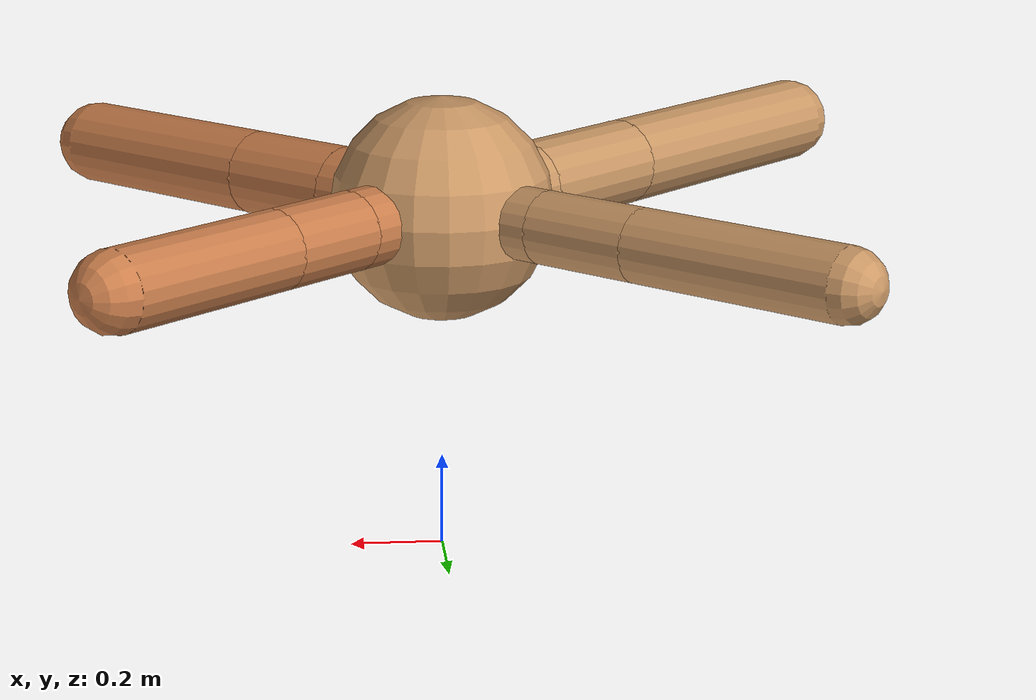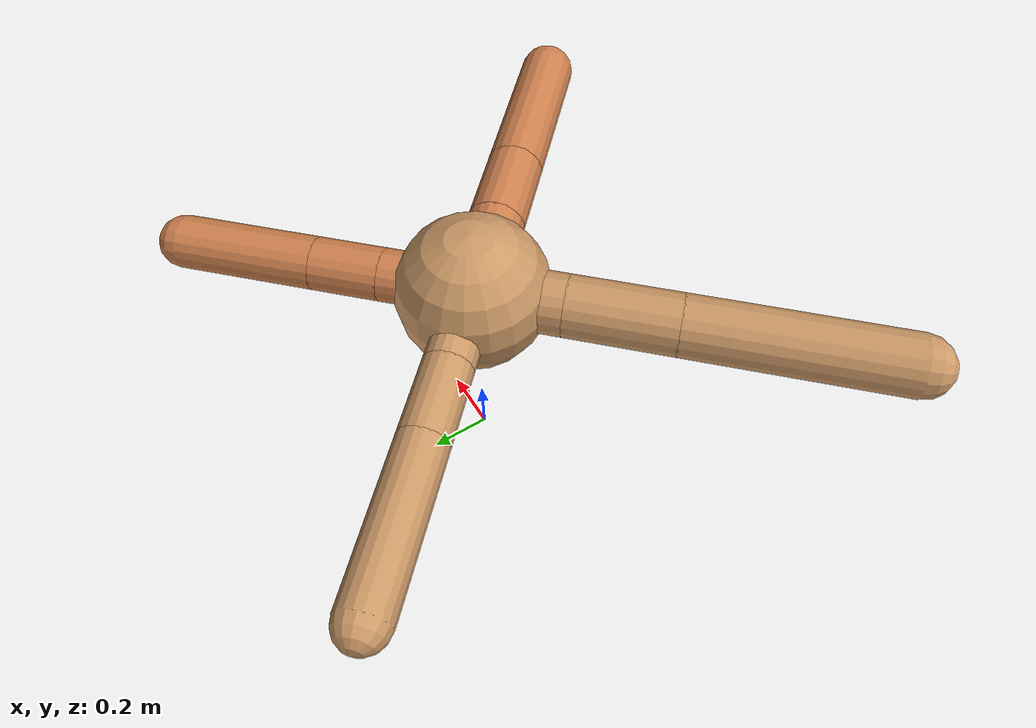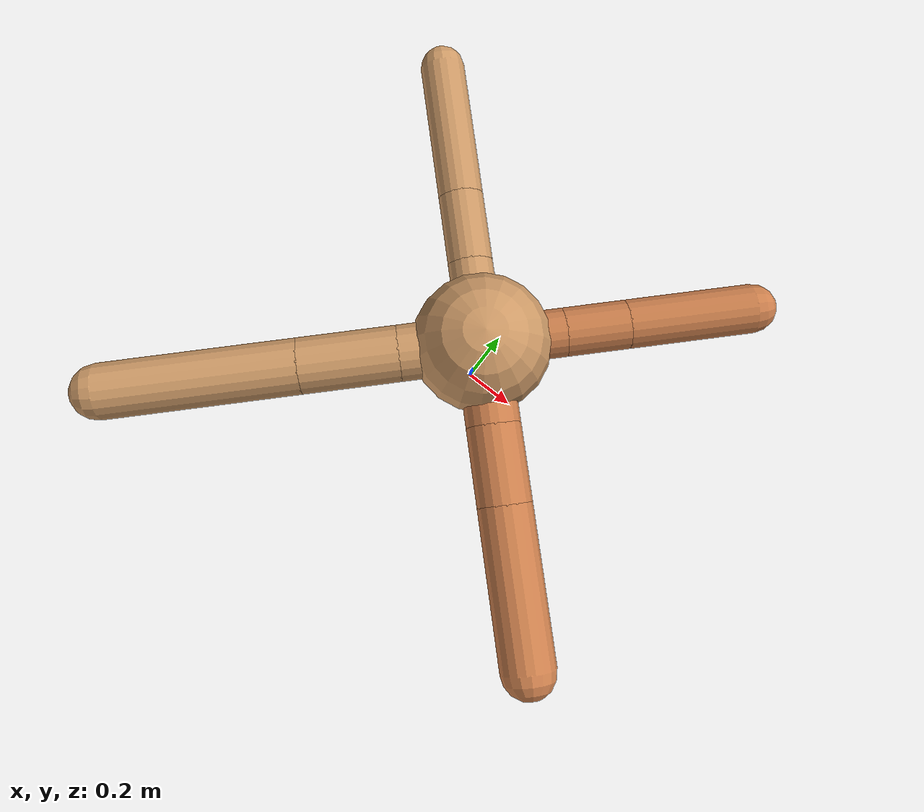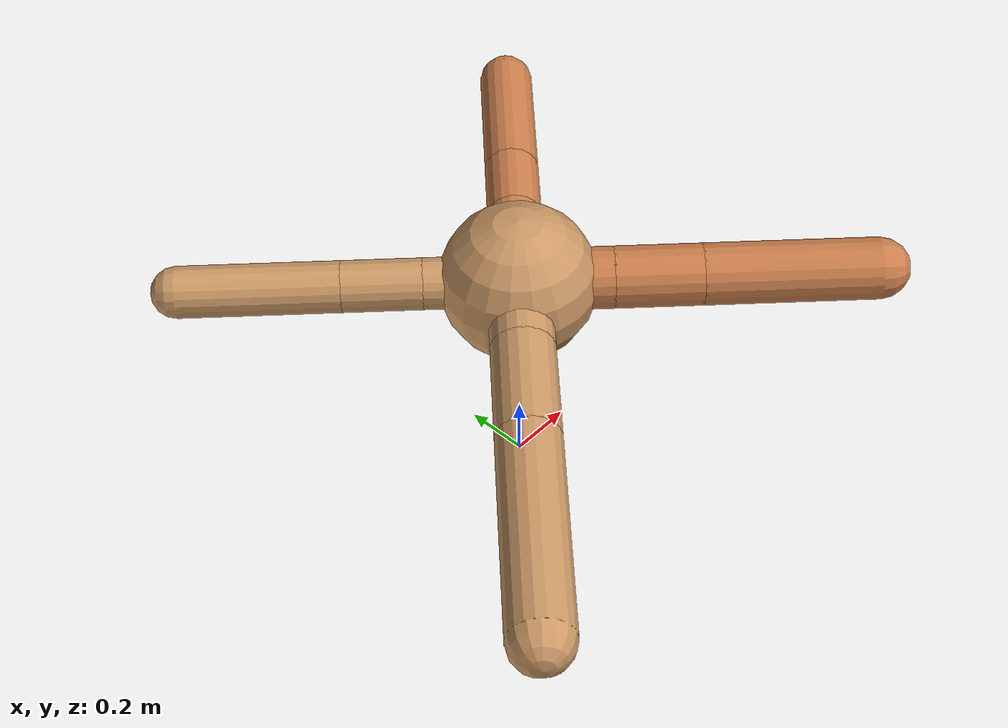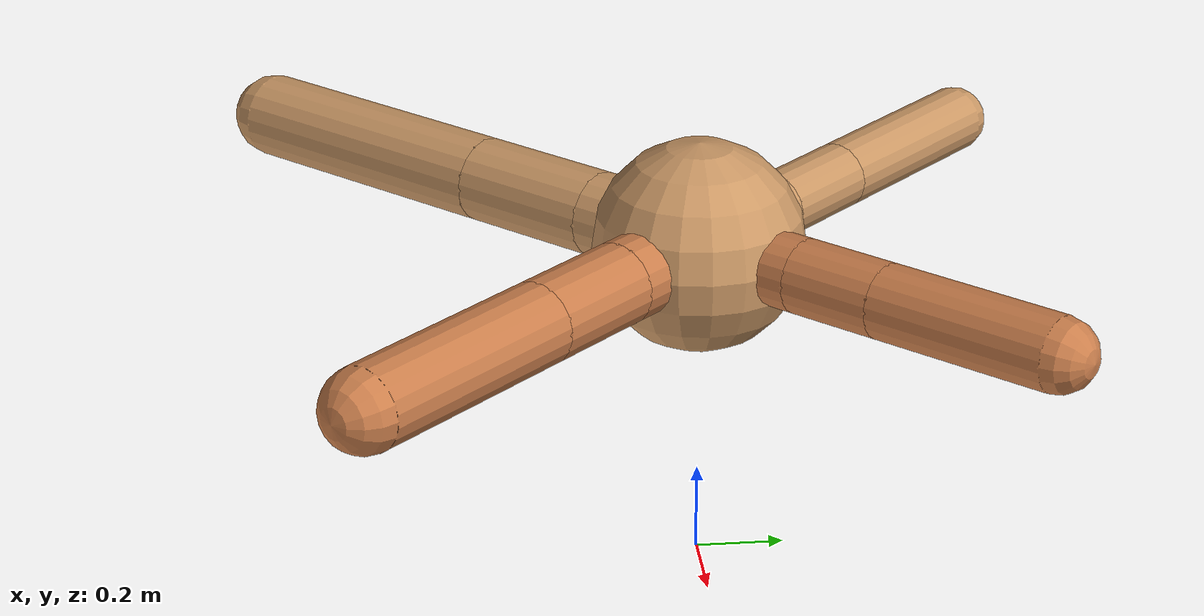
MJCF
<?xml version="1.0" ?>
<mujoco model="ant">

	<compiler angle="degree" coordinate="local" inertiafromgeom="true"/>

	<option integrator="RK4" timestep="0.01"/>

	<custom>

		<numeric data="0.0 0.0 0.55 1.0 0.0 0.0 0.0 0.0 1.0 0.0 -1.0 0.0 -1.0 0.0 1.0" name="init_qpos"/>

	</custom>

	<default>

		<joint armature="1" damping="1" limited="true"/>

		<geom conaffinity="0" condim="3" density="5.0" friction="1.5 0.1 0.1" margin="0.01" rgba="0.8 0.6 0.4 1"/>

	</default>

	<worldbody>

		<body name="torso" pos="0 0 0.75">

			<geom name="torso_geom" pos="0 0 0" size="0.23876433565384667" type="sphere"/>

			<!--joint armature="0" damping="0" limited="false" margin="0.01" name="root" pos="0 0 0" type="free"/-->

			<body name="front_left_leg" pos="0 0 0">

				<geom fromto="0 0 0 0.2 0.2 0" name="aux_1_geom" size="0.08379637796974705" type="capsule" rgba=".8 .5 .3 1"/>

				<body name="aux_1" pos="0.2 0.2 0">

					<joint axis="0 0 1" name="hip_1" pos="0.0 0.0 0.0" range="-40 40" type="hinge"/>

					<geom fromto="0 0 0 0.15212626978783628 0.15212626978783628 0" name="left_leg_geom" size="0.08379637796974705" type="capsule" rgba=".8 .5 .3 1"/>

					<body pos="0.15212626978783628 0.15212626978783628 0" name="front_left_foot">

						<joint axis="-1 1 0" name="ankle_1" pos="0.0 0.0 0.0" range="30 100" type="hinge"/>

						<geom fromto="0 0 0 0.30425253957567255 0.30425253957567255 0" name="left_ankle_geom" size="0.08379637796974705" type="capsule" rgba=".8 .5 .3 1"/>

					</body>

				</body>

			</body>

			<body name="front_right_leg" pos="0 0 0">

				<geom fromto="0 0 0 -0.2 0.2 0" name="aux_2_geom" size="0.07752779510774344" type="capsule"/>

				<body name="aux_2" pos="-0.2 0.2 0">

					<joint axis="0 0 1" name="hip_2" pos="0.0 0.0 0.0" range="-40 40" type="hinge"/>

					<geom fromto="0 0 0 -0.17097362560163254 0.17097362560163254 0" name="right_leg_geom" size="0.07752779510774344" type="capsule"/>

					<body pos="-0.17097362560163254 0.17097362560163254 0" name="front_right_foot">

						<joint axis="1 1 0" name="ankle_2" pos="0.0 0.0 0.0" range="-100 -30" type="hinge"/>

						<geom fromto="0 0 0 -0.3419472512032651 0.3419472512032651 0" name="right_ankle_geom" size="0.07752779510774344" type="capsule"/>

					</body>

				</body>

			</body>

			<body name="left_back_leg" pos="0 0 0">

				<geom fromto="0 0 0 -0.2 -0.2 0" name="aux_3_geom" size="0.09698829350595903" type="capsule"/>

				<body name="aux_3" pos="-0.2 -0.2 0">

					<joint axis="0 0 1" name="hip_3" pos="0.0 0.0 0.0" range="-40 40" type="hinge"/>

					<geom fromto="0 0 0 -0.2399098178492242 -0.2399098178492242 0" name="back_leg_geom" size="0.09698829350595903" type="capsule"/>

					<body pos="-0.2399098178492242 -0.2399098178492242 0" name="left_back_foot">

						<joint axis="-1 1 0" name="ankle_3" pos="0.0 0.0 0.0" range="-100 -30" type="hinge"/>

						<geom fromto="0 0 0 -0.4798196356984484 -0.4798196356984484 0" name="third_ankle_geom" size="0.09698829350595903" type="capsule"/>

					</body>

				</body>

			</body>

			<body name="right_back_leg" pos="0 0 0">

				<geom fromto="0 0 0 0.2 -0.2 0" name="aux_4_geom" size="0.09309765351868225" type="capsule" rgba=".8 .5 .3 1"/>

				<body name="aux_4" pos="0.2 -0.2 0">

					<joint axis="0 0 1" name="hip_4" pos="0.0 0.0 0.0" range="-40 40" type="hinge"/>

					<geom fromto="0 0 0 0.18730387829256823 -0.18730387829256823 0" name="rightback_leg_geom" size="0.09309765351868225" type="capsule" rgba=".8 .5 .3 1"/>

					<body pos="0.18730387829256823 -0.18730387829256823 0" name="right_back_foot">

						<joint axis="1 1 0" name="ankle_4" pos="0.0 0.0 0.0" range="30 100" type="hinge"/>

						<geom fromto="0 0 0 0.37460775658513645 -0.37460775658513645 0" name="fourth_ankle_geom" size="0.09309765351868225" type="capsule" rgba=".8 .5 .3 1"/>

					</body>

				</body>

			</body>

		</body>

	</worldbody>

	<actuator>

		<motor ctrllimited="true" ctrlrange="-1.0 1.0" joint="hip_4" gear="150"/>

		<motor ctrllimited="true" ctrlrange="-1.0 1.0" joint="ankle_4" gear="150"/>

		<motor ctrllimited="true" ctrlrange="-1.0 1.0" joint="hip_1" gear="150"/>

		<motor ctrllimited="true" ctrlrange="-1.0 1.0" joint="ankle_1" gear="150"/>

		<motor ctrllimited="true" ctrlrange="-1.0 1.0" joint="hip_2" gear="150"/>

		<motor ctrllimited="true" ctrlrange="-1.0 1.0" joint="ankle_2" gear="150"/>

		<motor ctrllimited="true" ctrlrange="-1.0 1.0" joint="hip_3" gear="150"/>

		<motor ctrllimited="true" ctrlrange="-1.0 1.0" joint="ankle_3" gear="150"/>

	</actuator>

</mujoco>
